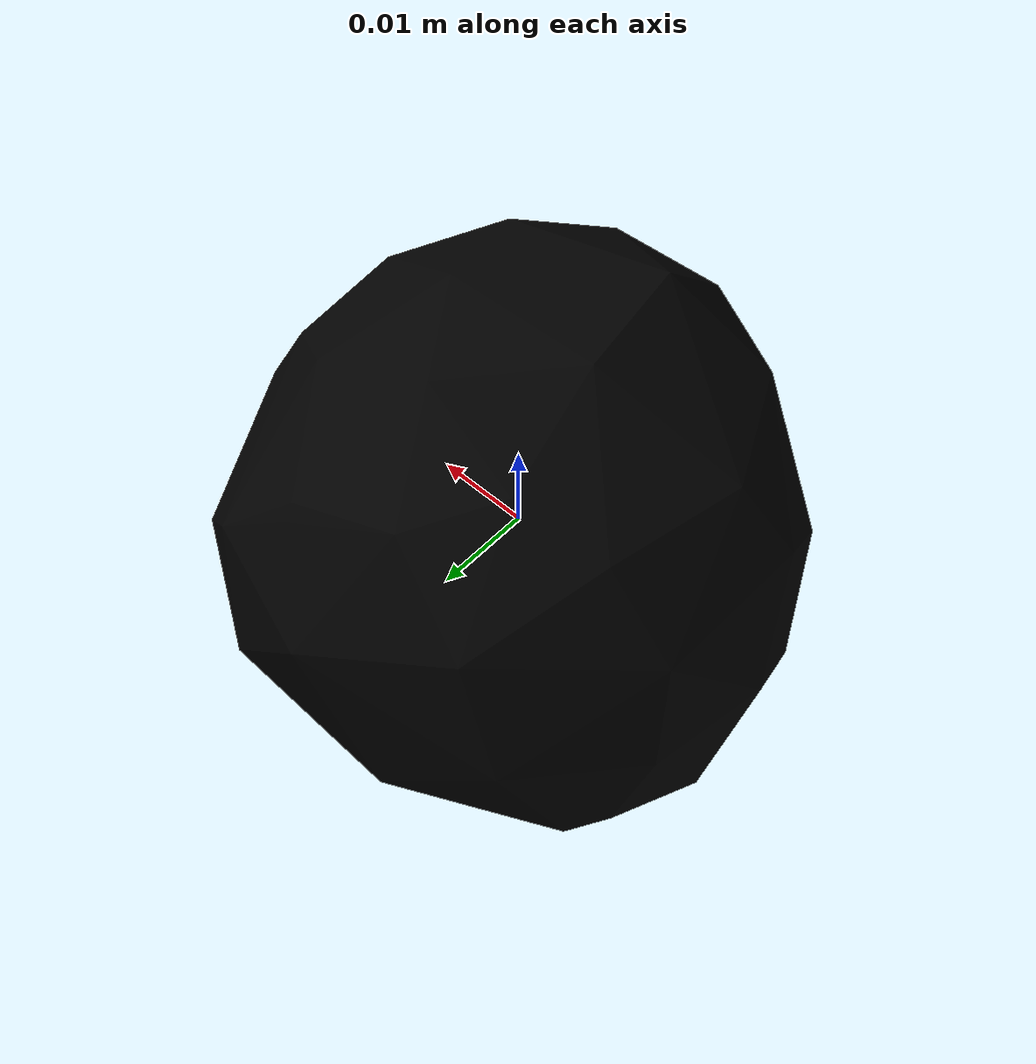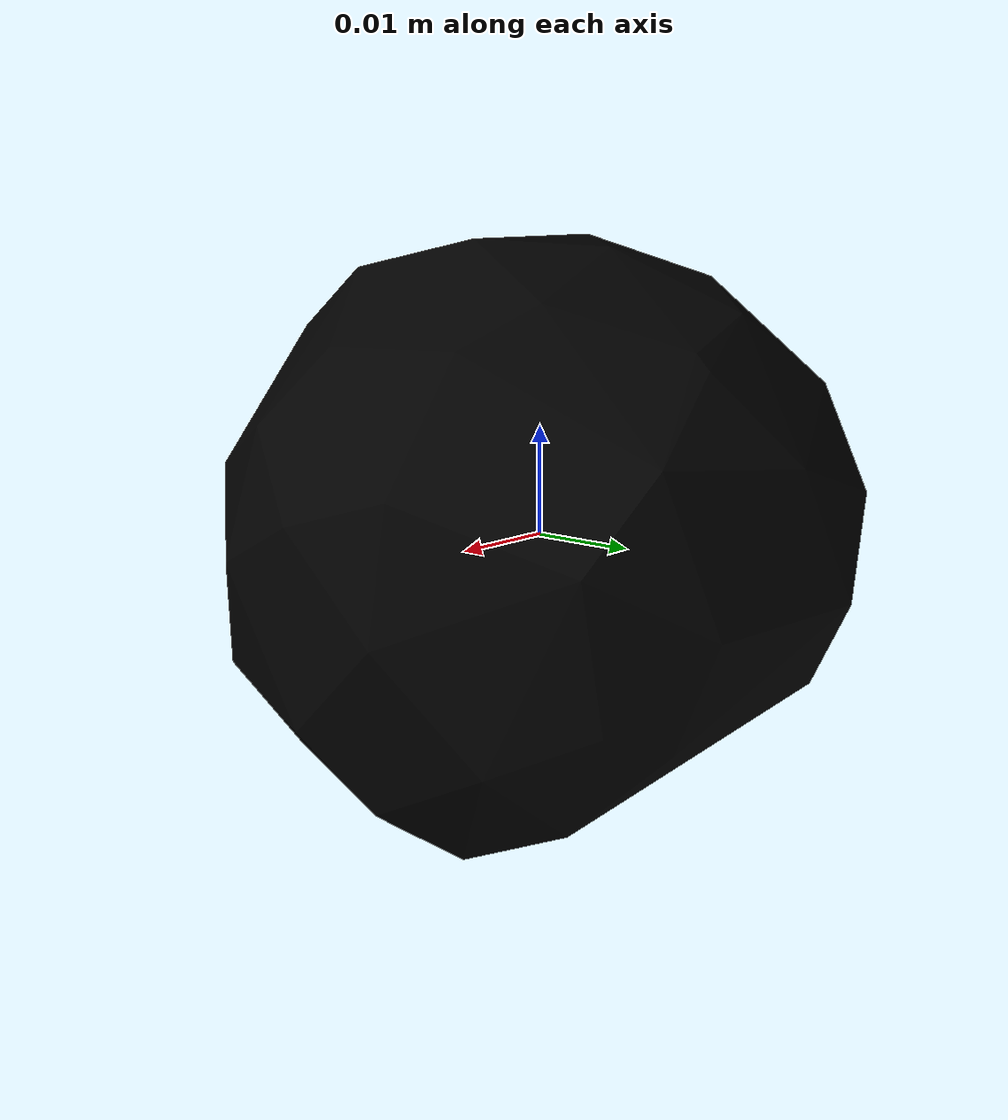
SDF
<?xml version="1.0"?>
<sdf version="1.4">
  <model name="018_plum_textured">
    <pose>0 0 0  0 0 0</pose>
    <link name="body">
      <inertial>
        <mass> 1.0 </mass>
        <pose>0 0 0 0 0 0</pose>
        <inertia>
          <ixx>0.000290856332937604</ixx>
          <ixy>0.0</ixy>
          <ixz>0.0</ixz>
          <iyy>0.00030414959856500423</iyy>
          <iyz>0.0</iyz>
          <izz>0.00031537301194739157</izz>
        </inertia>
      </inertial>
      <visual name="visual">
        <geometry>
          <mesh>
            <uri>model://018_plum_textured/textured.dae</uri>
          </mesh>
        </geometry>
        <pose>0.0025530372947990083 0.0006012939283337674 -0.031554226688715006 0.7133251038060556 0.16793262838544934 -0.07128230731442503</pose>
      </visual>
      <collision name="collision">
        <geometry>
          <mesh>
            <uri>model://018_plum_textured/textured.col.dae</uri>
          </mesh>
        </geometry>
        <max_contacts>10</max_contacts>
        <surface>
          <friction>
            <ode>
              <mu>0.8</mu>
              <mu2>0.8</mu2>
              <slip1>0</slip1>
              <slip2>0</slip2>
            </ode>
            <torsional>
              <ode/>
            </torsional>
          </friction>
          <contact>
            <ode>
              <kp>1000000.0</kp>
              <kd>1.0</kd>
              <max_vel>0.0</max_vel>
            </ode>
          </contact>
        </surface>
        <pose>0.0025530372947990083 0.0006012939283337674 -0.031554226688715006 0.7133251038060556 0.16793262838544934 -0.07128230731442503</pose>
      </collision>
    </link>
  </model>
</sdf>
